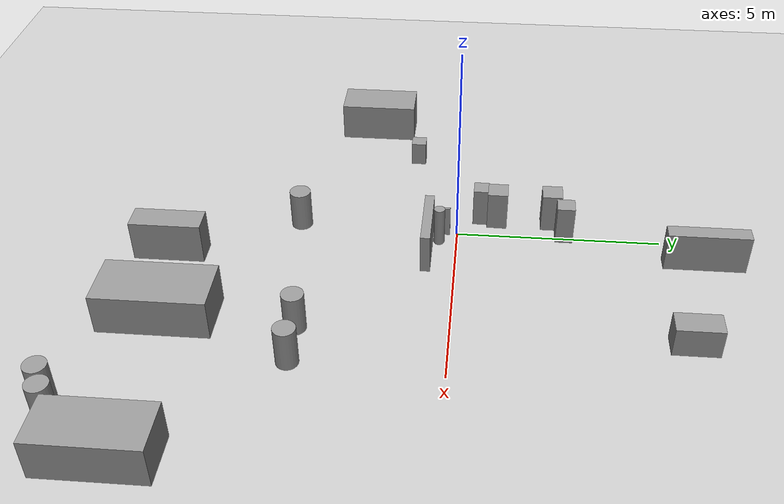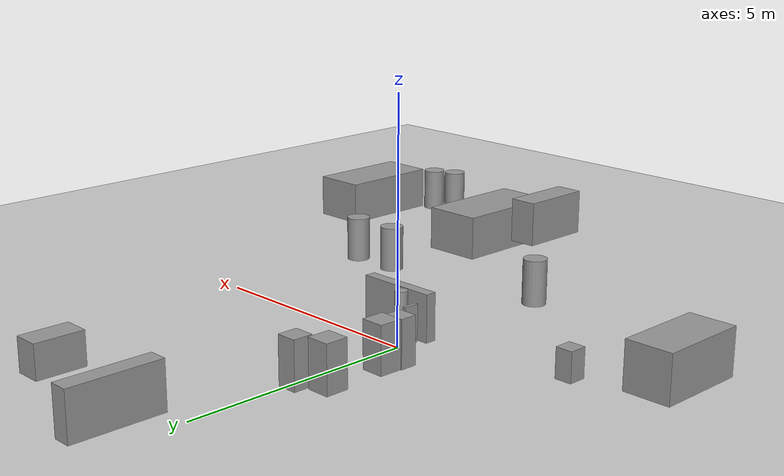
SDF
<sdf version="1.6">
 <world name="default">
  <model name="ground_plane">
   <static>1</static>
   <link name="link">
    <collision name="collision">
     <geometry><plane><normal>0 0 1</normal><size>100 100</size></plane></geometry>
     <surface><friction><ode><mu>100</mu><mu2>50</mu2></ode></friction></surface>
    </collision>
    <visual name="visual">
     <cast_shadows>0</cast_shadows>
     <geometry><plane><normal>0 0 1</normal><size>100 100</size></plane></geometry>
     <material>
      <script><uri>file://media/materials/scripts/gazebo.material</uri><name>Gazebo/Grey</name></script>
     </material>
    </visual>
   </link>
  </model>
  <model name="cma_armario">
   <link name="link_0">
    <pose>1.32157 0.885178 0.5 0 -0 0</pose>
    <inertial>
     <mass>0.402376</mass>
     <inertia>
      <ixx>0.0353686</ixx>
      <ixy>0</ixy>
      <ixz>0</ixz>
      <iyy>0.132616</iyy>
      <iyz>0</iyz>
      <izz>0.100922</izz>
     </inertia>
    </inertial>
    <visual name="visual">
     <geometry><box><size>1.71877 0.234069 1</size></box></geometry>
     <material>
      <lighting>1</lighting>
      <script><uri>file://media/materials/scripts/gazebo.material</uri><name>Gazebo/Grey</name></script>
      <ambient>0.3 0.3 0.3 1</ambient>
      <diffuse>0.7 0.7 0.7 1</diffuse>
      <specular>0.01 0.01 0.01 1</specular>
      <emissive>0 0 0 1</emissive>
     </material>
    </visual>
    <collision name="collision">
     <geometry><box><size>1.71877 0.234069 1</size></box></geometry>
     <surface>
      <friction>
       <ode><mu>1</mu><mu2>1</mu2><fdir1>0 0 0</fdir1><slip1>0</slip1><slip2>0</slip2></ode>
       <torsional>
        <coefficient>1</coefficient>
        <patch_radius>0</patch_radius>
        <surface_radius>0</surface_radius>
        <use_patch_radius>1</use_patch_radius>
        <ode><slip>0</slip></ode>
       </torsional>
      </friction>
      <bounce><restitution_coefficient>0</restitution_coefficient><threshold>1e+06</threshold></bounce>
      <contact>
       <collide_without_contact>0</collide_without_contact>
       <collide_without_contact_bitmask>1</collide_without_contact_bitmask>
       <collide_bitmask>1</collide_bitmask>
       <ode>
        <soft_cfm>0</soft_cfm>
        <soft_erp>0.2</soft_erp>
        <kp>1e+13</kp>
        <kd>1</kd>
        <max_vel>0.01</max_vel>
        <min_depth>0</min_depth>
       </ode>
       <bullet>
        <split_impulse>1</split_impulse>
        <split_impulse_penetration_threshold>-0.01</split_impulse_penetration_threshold>
        <soft_cfm>0</soft_cfm>
        <soft_erp>0.2</soft_erp>
        <kp>1e+13</kp>
        <kd>1</kd>
       </bullet>
      </contact>
     </surface>
    </collision>
   </link>
   <static>0</static>
   <pose>-0.669099 -1.58259 0 0 -0 0.00089</pose>
  </model>
  <model name="cma_lixo">
   <link name="link_1">
    <pose>0.882962 1.81586 0.5 0 -0 0</pose>
    <inertial>
     <mass>0.0687644</mass>
     <inertia>
      <ixx>0.00602588</ixx>
      <ixy>0</ixy>
      <ixz>0</ixz>
      <iyy>0.00602588</iyy>
      <iyz>0</iyz>
      <izz>0.000591068</izz>
     </inertia>
    </inertial>
    <visual name="visual">
     <geometry><cylinder><radius>0.131112</radius><length>1</length></cylinder></geometry>
     <material>
      <lighting>1</lighting>
      <script><uri>file://media/materials/scripts/gazebo.material</uri><name>Gazebo/Grey</name></script>
      <ambient>0.3 0.3 0.3 1</ambient>
      <diffuse>0.7 0.7 0.7 1</diffuse>
      <specular>0.01 0.01 0.01 1</specular>
      <emissive>0 0 0 1</emissive>
     </material>
    </visual>
    <collision name="collision">
     <geometry><cylinder><radius>0.131112</radius><length>1</length></cylinder></geometry>
     <surface>
      <friction>
       <ode><mu>1</mu><mu2>1</mu2><fdir1>0 0 0</fdir1><slip1>0</slip1><slip2>0</slip2></ode>
       <torsional>
        <coefficient>1</coefficient>
        <patch_radius>0</patch_radius>
        <surface_radius>0</surface_radius>
        <use_patch_radius>1</use_patch_radius>
        <ode><slip>0</slip></ode>
       </torsional>
      </friction>
      <bounce><restitution_coefficient>0</restitution_coefficient><threshold>1e+06</threshold></bounce>
      <contact>
       <collide_without_contact>0</collide_without_contact>
       <collide_without_contact_bitmask>1</collide_without_contact_bitmask>
       <collide_bitmask>1</collide_bitmask>
       <ode>
        <soft_cfm>0</soft_cfm>
        <soft_erp>0.2</soft_erp>
        <kp>1e+13</kp>
        <kd>1</kd>
        <max_vel>0.01</max_vel>
        <min_depth>0</min_depth>
       </ode>
       <bullet>
        <split_impulse>1</split_impulse>
        <split_impulse_penetration_threshold>-0.01</split_impulse_penetration_threshold>
        <soft_cfm>0</soft_cfm>
        <soft_erp>0.2</soft_erp>
        <kp>1e+13</kp>
        <kd>1</kd>
       </bullet>
      </contact>
     </surface>
    </collision>
   </link>
   <static>0</static>
   <pose>-1.35785 -1.52544 -2e-06 0 0 -0.543097</pose>
  </model>
  <model name="cma_gaveteiro_pequeno_0">
   <link name="link_0">
    <pose>0.256174 1.25055 0.5 0 -0 0</pose>
    <inertial>
     <mass>0.187186</mass>
     <inertia>
      <ixx>0.01851</ixx>
      <ixy>0</ixy>
      <ixz>0</ixz>
      <iyy>0.0185276</iyy>
      <iyz>0</iyz>
      <izz>0.00583981</izz>
     </inertia>
    </inertial>
    <visual name="visual">
     <geometry><box><size>0.433317 0.432002 1</size></box></geometry>
     <material>
      <lighting>1</lighting>
      <script><uri>file://media/materials/scripts/gazebo.material</uri><name>Gazebo/Grey</name></script>
      <ambient>0.3 0.3 0.3 1</ambient>
      <diffuse>0.7 0.7 0.7 1</diffuse>
      <specular>0.01 0.01 0.01 1</specular>
      <emissive>0 0 0 1</emissive>
     </material>
    </visual>
    <collision name="collision">
     <geometry><box><size>0.433317 0.432002 1</size></box></geometry>
     <surface>
      <friction>
       <ode><mu>1</mu><mu2>1</mu2><fdir1>0 0 0</fdir1><slip1>0</slip1><slip2>0</slip2></ode>
       <torsional>
        <coefficient>1</coefficient>
        <patch_radius>0</patch_radius>
        <surface_radius>0</surface_radius>
        <use_patch_radius>1</use_patch_radius>
        <ode><slip>0</slip></ode>
       </torsional>
      </friction>
      <bounce><restitution_coefficient>0</restitution_coefficient><threshold>1e+06</threshold></bounce>
      <contact>
       <collide_without_contact>0</collide_without_contact>
       <collide_without_contact_bitmask>1</collide_without_contact_bitmask>
       <collide_bitmask>1</collide_bitmask>
       <ode>
        <soft_cfm>0</soft_cfm>
        <soft_erp>0.2</soft_erp>
        <kp>1e+13</kp>
        <kd>1</kd>
        <max_vel>0.01</max_vel>
        <min_depth>0</min_depth>
       </ode>
       <bullet>
        <split_impulse>1</split_impulse>
        <split_impulse_penetration_threshold>-0.01</split_impulse_penetration_threshold>
        <soft_cfm>0</soft_cfm>
        <soft_erp>0.2</soft_erp>
        <kp>1e+13</kp>
        <kd>1</kd>
       </bullet>
      </contact>
     </surface>
    </collision>
   </link>
   <static>0</static>
   <pose>-0.336336 1.39518 -4e-06 1e-06 -6e-06 -0.000273</pose>
  </model>
  <model name="cma_gaveteiro">
   <link name="link_0">
    <pose>-0 4e-06 0 0 -0 0</pose>
    <inertial>
     <mass>0.245086</mass>
     <inertia>
      <ixx>0.025418</ixx>
      <ixy>0</ixy>
      <ixz>0</ixz>
      <iyy>0.0254411</iyy>
      <iyz>0</iyz>
      <izz>0.0100113</izz>
     </inertia>
    </inertial>
    <visual name="visual">
     <geometry><box><size>0.495657 0.494491 1</size></box></geometry>
     <material>
      <lighting>1</lighting>
      <script><uri>file://media/materials/scripts/gazebo.material</uri><name>Gazebo/Grey</name></script>
      <ambient>0.3 0.3 0.3 1</ambient>
      <diffuse>0.7 0.7 0.7 1</diffuse>
      <specular>0.01 0.01 0.01 1</specular>
      <emissive>0 0 0 1</emissive>
     </material>
    </visual>
    <collision name="collision">
     <geometry><box><size>0.495657 0.494491 1</size></box></geometry>
     <surface>
      <friction>
       <ode><mu>1</mu><mu2>1</mu2><fdir1>0 0 0</fdir1><slip1>0</slip1><slip2>0</slip2></ode>
       <torsional>
        <coefficient>1</coefficient>
        <patch_radius>0</patch_radius>
        <surface_radius>0</surface_radius>
        <use_patch_radius>1</use_patch_radius>
        <ode><slip>0</slip></ode>
       </torsional>
      </friction>
      <bounce><restitution_coefficient>0</restitution_coefficient><threshold>1e+06</threshold></bounce>
      <contact>
       <collide_without_contact>0</collide_without_contact>
       <collide_without_contact_bitmask>1</collide_without_contact_bitmask>
       <collide_bitmask>1</collide_bitmask>
       <ode>
        <soft_cfm>0</soft_cfm>
        <soft_erp>0.2</soft_erp>
        <kp>1e+13</kp>
        <kd>1</kd>
        <max_vel>0.01</max_vel>
        <min_depth>0</min_depth>
       </ode>
       <bullet>
        <split_impulse>1</split_impulse>
        <split_impulse_penetration_threshold>-0.01</split_impulse_penetration_threshold>
        <soft_cfm>0</soft_cfm>
        <soft_erp>0.2</soft_erp>
        <kp>1e+13</kp>
        <kd>1</kd>
       </bullet>
      </contact>
     </surface>
    </collision>
   </link>
   <static>0</static>
   <pose>-0.591985 2.32618 0.499997 -7e-06 -6e-06 0.000727</pose>
  </model>
  <model name="cma_gaveteiro_0">
   <link name="link_0">
    <pose>-0 4e-06 0 0 -0 0</pose>
    <inertial>
     <mass>0.245086</mass>
     <inertia>
      <ixx>0.025418</ixx>
      <ixy>0</ixy>
      <ixz>0</ixz>
      <iyy>0.0254411</iyy>
      <iyz>0</iyz>
      <izz>0.0100113</izz>
     </inertia>
    </inertial>
    <visual name="visual">
     <geometry><box><size>0.495657 0.494491 1</size></box></geometry>
     <material>
      <lighting>1</lighting>
      <script><uri>file://media/materials/scripts/gazebo.material</uri><name>Gazebo/Grey</name></script>
      <ambient>0.3 0.3 0.3 1</ambient>
      <diffuse>0.7 0.7 0.7 1</diffuse>
      <specular>0.01 0.01 0.01 1</specular>
      <emissive>0 0 0 1</emissive>
     </material>
    </visual>
    <collision name="collision">
     <geometry><box><size>0.495657 0.494491 1</size></box></geometry>
     <surface>
      <friction>
       <ode><mu>1</mu><mu2>1</mu2><fdir1>0 0 0</fdir1><slip1>0</slip1><slip2>0</slip2></ode>
       <torsional>
        <coefficient>1</coefficient>
        <patch_radius>0</patch_radius>
        <surface_radius>0</surface_radius>
        <use_patch_radius>1</use_patch_radius>
        <ode><slip>0</slip></ode>
       </torsional>
      </friction>
      <bounce><restitution_coefficient>0</restitution_coefficient><threshold>1e+06</threshold></bounce>
      <contact>
       <collide_without_contact>0</collide_without_contact>
       <collide_without_contact_bitmask>1</collide_without_contact_bitmask>
       <collide_bitmask>1</collide_bitmask>
       <ode>
        <soft_cfm>0</soft_cfm>
        <soft_erp>0.2</soft_erp>
        <kp>1e+13</kp>
        <kd>1</kd>
        <max_vel>0.01</max_vel>
        <min_depth>0</min_depth>
       </ode>
       <bullet>
        <split_impulse>1</split_impulse>
        <split_impulse_penetration_threshold>-0.01</split_impulse_penetration_threshold>
        <soft_cfm>0</soft_cfm>
        <soft_erp>0.2</soft_erp>
        <kp>1e+13</kp>
        <kd>1</kd>
       </bullet>
      </contact>
     </surface>
    </collision>
   </link>
   <static>0</static>
   <pose>-0.578253 0.983065 0.499997 -7e-06 6e-06 -0.018035</pose>
  </model>
  <model name="cma_sofa2">
   <link name="link_0">
    <pose>-4.668 -2.00601 0.5 0 -0 0</pose>
    <inertial>
     <mass>1.98683</mass>
     <inertia>
      <ixx>0.819149</ixx>
      <ixy>0</ixy>
      <ixz>0</ixz>
      <iyy>0.331138</iyy>
      <iyz>0</iyz>
      <izz>0.819149</izz>
     </inertia>
    </inertial>
    <visual name="visual">
     <geometry><box><size>1 1.98682 1</size></box></geometry>
     <material>
      <lighting>1</lighting>
      <script><uri>file://media/materials/scripts/gazebo.material</uri><name>Gazebo/Grey</name></script>
      <ambient>0.3 0.3 0.3 1</ambient>
      <diffuse>0.7 0.7 0.7 1</diffuse>
      <specular>0.01 0.01 0.01 1</specular>
      <emissive>0 0 0 1</emissive>
     </material>
    </visual>
    <collision name="collision">
     <geometry><box><size>1 1.98682 1</size></box></geometry>
     <surface>
      <friction>
       <ode><mu>1</mu><mu2>1</mu2><fdir1>0 0 0</fdir1><slip1>0</slip1><slip2>0</slip2></ode>
       <torsional>
        <coefficient>1</coefficient>
        <patch_radius>0</patch_radius>
        <surface_radius>0</surface_radius>
        <use_patch_radius>1</use_patch_radius>
        <ode><slip>0</slip></ode>
       </torsional>
      </friction>
      <bounce><restitution_coefficient>0</restitution_coefficient><threshold>1e+06</threshold></bounce>
      <contact>
       <collide_without_contact>0</collide_without_contact>
       <collide_without_contact_bitmask>1</collide_without_contact_bitmask>
       <collide_bitmask>1</collide_bitmask>
       <ode>
        <soft_cfm>0</soft_cfm>
        <soft_erp>0.2</soft_erp>
        <kp>1e+13</kp>
        <kd>1</kd>
        <max_vel>0.01</max_vel>
        <min_depth>0</min_depth>
       </ode>
       <bullet>
        <split_impulse>1</split_impulse>
        <split_impulse_penetration_threshold>-0.01</split_impulse_penetration_threshold>
        <soft_cfm>0</soft_cfm>
        <soft_erp>0.2</soft_erp>
        <kp>1e+13</kp>
        <kd>1</kd>
       </bullet>
      </contact>
     </surface>
    </collision>
   </link>
   <static>0</static>
   <pose>-0.095323 -0.409527 -1.3e-05 -3e-06 1e-06 -5e-06</pose>
  </model>
  <model name="cma_apoio_s">
   <link name="link_1">
    <pose>-1.9376 -3.46551 0.5 0 -0 0</pose>
    <inertial>
     <mass>0.0878463</mass>
     <inertia>
      <ixx>0.00392696</ixx>
      <ixy>0</ixy>
      <ixz>0</ixz>
      <iyy>0.00385356</iyy>
      <iyz>0</iyz>
      <izz>0.0020587</izz>
     </inertia>
    </inertial>
    <visual name="visual">
     <geometry><box><size>0.368223 0.381592 0.625118</size></box></geometry>
     <material>
      <lighting>1</lighting>
      <script><uri>file://media/materials/scripts/gazebo.material</uri><name>Gazebo/Grey</name></script>
      <ambient>0.3 0.3 0.3 1</ambient>
      <diffuse>0.7 0.7 0.7 1</diffuse>
      <specular>0.01 0.01 0.01 1</specular>
      <emissive>0 0 0 1</emissive>
     </material>
    </visual>
    <collision name="collision">
     <geometry><box><size>0.368223 0.381592 0.625118</size></box></geometry>
     <surface>
      <friction>
       <ode><mu>1</mu><mu2>1</mu2><fdir1>0 0 0</fdir1><slip1>0</slip1><slip2>0</slip2></ode>
       <torsional>
        <coefficient>1</coefficient>
        <patch_radius>0</patch_radius>
        <surface_radius>0</surface_radius>
        <use_patch_radius>1</use_patch_radius>
        <ode><slip>0</slip></ode>
       </torsional>
      </friction>
      <bounce><restitution_coefficient>0</restitution_coefficient><threshold>1e+06</threshold></bounce>
      <contact>
       <collide_without_contact>0</collide_without_contact>
       <collide_without_contact_bitmask>1</collide_without_contact_bitmask>
       <collide_bitmask>1</collide_bitmask>
       <ode>
        <soft_cfm>0</soft_cfm>
        <soft_erp>0.2</soft_erp>
        <kp>1e+13</kp>
        <kd>1</kd>
        <max_vel>0.01</max_vel>
        <min_depth>0</min_depth>
       </ode>
       <bullet>
        <split_impulse>1</split_impulse>
        <split_impulse_penetration_threshold>-0.01</split_impulse_penetration_threshold>
        <soft_cfm>0</soft_cfm>
        <soft_erp>0.2</soft_erp>
        <kp>1e+13</kp>
        <kd>1</kd>
       </bullet>
      </contact>
     </surface>
    </collision>
   </link>
   <static>0</static>
   <pose>-1.31361 2.27354 -0.187385 1.2e-05 -9e-06 0.000485</pose>
  </model>
  <model name="cma_sofa_ch2">
   <link name="link_0">
    <pose>7.54152 -9.06061 0.5 0 -0 0</pose>
    <inertial>
     <mass>3.05287</mass>
     <inertia><ixx>1.79053</ixx><ixy>0</ixy><ixz>0</ixz><iyy>0.647089</iyy><iyz>0</iyz><izz>1.92881</izz></inertia>
    </inertial>
    <visual name="visual">
     <geometry><box><size>1.24235 2.45729 1</size></box></geometry>
     <material>
      <lighting>1</lighting>
      <script><uri>file://media/materials/scripts/gazebo.material</uri><name>Gazebo/Grey</name></script>
      <ambient>0.3 0.3 0.3 1</ambient>
      <diffuse>0.7 0.7 0.7 1</diffuse>
      <specular>0.01 0.01 0.01 1</specular>
      <emissive>0 0 0 1</emissive>
     </material>
    </visual>
    <collision name="collision">
     <geometry><box><size>1.24235 2.45729 1</size></box></geometry>
     <surface>
      <friction>
       <ode><mu>1</mu><mu2>1</mu2><fdir1>0 0 0</fdir1><slip1>0</slip1><slip2>0</slip2></ode>
       <torsional>
        <coefficient>1</coefficient>
        <patch_radius>0</patch_radius>
        <surface_radius>0</surface_radius>
        <use_patch_radius>1</use_patch_radius>
        <ode><slip>0</slip></ode>
       </torsional>
      </friction>
      <bounce><restitution_coefficient>0</restitution_coefficient><threshold>1e+06</threshold></bounce>
      <contact>
       <collide_without_contact>0</collide_without_contact>
       <collide_without_contact_bitmask>1</collide_without_contact_bitmask>
       <collide_bitmask>1</collide_bitmask>
       <ode>
        <soft_cfm>0</soft_cfm>
        <soft_erp>0.2</soft_erp>
        <kp>1e+13</kp>
        <kd>1</kd>
        <max_vel>0.01</max_vel>
        <min_depth>0</min_depth>
       </ode>
       <bullet>
        <split_impulse>1</split_impulse>
        <split_impulse_penetration_threshold>-0.01</split_impulse_penetration_threshold>
        <soft_cfm>0</soft_cfm>
        <soft_erp>0.2</soft_erp>
        <kp>1e+13</kp>
        <kd>1</kd>
       </bullet>
      </contact>
     </surface>
    </collision>
   </link>
   <model name="cma_armarioL">
    <link name="link_0">
     <pose>3.66226 -6.16735 0.5 0 -0 0</pose>
     <inertial>
      <mass>1.04821</mass>
      <inertia>
       <ixx>0.330873</ixx>
       <ixy>0</ixy>
       <ixz>0</ixz>
       <iyy>0.121777</iyy>
       <iyz>0</iyz>
       <izz>0.277949</izz>
      </inertia>
     </inertial>
     <visual name="visual">
      <geometry><box><size>0.627792 1.66972 1</size></box></geometry>
      <material>
       <lighting>1</lighting>
       <script><uri>file://media/materials/scripts/gazebo.material</uri><name>Gazebo/Grey</name></script>
       <ambient>0.3 0.3 0.3 1</ambient>
       <diffuse>0.7 0.7 0.7 1</diffuse>
       <specular>0.01 0.01 0.01 1</specular>
       <emissive>0 0 0 1</emissive>
      </material>
     </visual>
     <collision name="collision">
      <geometry><box><size>0.627792 1.66972 1</size></box></geometry>
      <surface>
       <friction>
        <ode><mu>1</mu><mu2>1</mu2><fdir1>0 0 0</fdir1><slip1>0</slip1><slip2>0</slip2></ode>
        <torsional>
         <coefficient>1</coefficient>
         <patch_radius>0</patch_radius>
         <surface_radius>0</surface_radius>
         <use_patch_radius>1</use_patch_radius>
         <ode><slip>0</slip></ode>
        </torsional>
       </friction>
       <bounce><restitution_coefficient>0</restitution_coefficient><threshold>1e+06</threshold></bounce>
       <contact>
        <collide_without_contact>0</collide_without_contact>
        <collide_without_contact_bitmask>1</collide_without_contact_bitmask>
        <collide_bitmask>1</collide_bitmask>
        <ode>
         <soft_cfm>0</soft_cfm>
         <soft_erp>0.2</soft_erp>
         <kp>1e+13</kp>
         <kd>1</kd>
         <max_vel>0.01</max_vel>
         <min_depth>0</min_depth>
        </ode>
        <bullet>
         <split_impulse>1</split_impulse>
         <split_impulse_penetration_threshold>-0.01</split_impulse_penetration_threshold>
         <soft_cfm>0</soft_cfm>
         <soft_erp>0.2</soft_erp>
         <kp>1e+13</kp>
         <kd>1</kd>
        </bullet>
       </contact>
      </surface>
     </collision>
    </link>
    <static>0</static>
    <pose>-1.91803 -2.92011 0.5 0 -0 0</pose>
   </model>
   <model name="cma_cesto">
    <link name="link_1">
     <pose>-0.329659 -1.55494 0 0 -0 0</pose>
     <inertial>
      <mass>0.267897</mass>
      <inertia>
       <ixx>0.0268102</ixx>
       <ixy>0</ixy>
       <ixz>0</ixz>
       <iyy>0.0268102</iyy>
       <iyz>0</iyz>
       <izz>0.00897111</izz>
      </inertia>
     </inertial>
     <visual name="visual">
      <geometry><cylinder><radius>0.258792</radius><length>1</length></cylinder></geometry>
      <material>
       <lighting>1</lighting>
       <script><uri>file://media/materials/scripts/gazebo.material</uri><name>Gazebo/Grey</name></script>
       <ambient>0.3 0.3 0.3 1</ambient>
       <diffuse>0.7 0.7 0.7 1</diffuse>
       <specular>0.01 0.01 0.01 1</specular>
       <emissive>0 0 0 1</emissive>
      </material>
     </visual>
     <collision name="collision">
      <geometry><cylinder><radius>0.258792</radius><length>1</length></cylinder></geometry>
      <surface>
       <friction>
        <ode><mu>1</mu><mu2>1</mu2><fdir1>0 0 0</fdir1><slip1>0</slip1><slip2>0</slip2></ode>
        <torsional>
         <coefficient>1</coefficient>
         <patch_radius>0</patch_radius>
         <surface_radius>0</surface_radius>
         <use_patch_radius>1</use_patch_radius>
         <ode><slip>0</slip></ode>
        </torsional>
       </friction>
       <bounce><restitution_coefficient>0</restitution_coefficient><threshold>1e+06</threshold></bounce>
       <contact>
        <collide_without_contact>0</collide_without_contact>
        <collide_without_contact_bitmask>1</collide_without_contact_bitmask>
        <collide_bitmask>1</collide_bitmask>
        <ode>
         <soft_cfm>0</soft_cfm>
         <soft_erp>0.2</soft_erp>
         <kp>1e+13</kp>
         <kd>1</kd>
         <max_vel>0.01</max_vel>
         <min_depth>0</min_depth>
        </ode>
        <bullet>
         <split_impulse>1</split_impulse>
         <split_impulse_penetration_threshold>-0.01</split_impulse_penetration_threshold>
         <soft_cfm>0</soft_cfm>
         <soft_erp>0.2</soft_erp>
         <kp>1e+13</kp>
         <kd>1</kd>
        </bullet>
       </contact>
      </surface>
     </collision>
    </link>
    <static>0</static>
    <pose>6.97935 -8.88509 0.5 0 -0 0</pose>
   </model>
   <model name="cma_cesto_0">
    <link name="link_1">
     <pose>-0.329659 -1.55494 0 0 -0 0</pose>
     <inertial>
      <mass>0.267897</mass>
      <inertia>
       <ixx>0.0268102</ixx>
       <ixy>0</ixy>
       <ixz>0</ixz>
       <iyy>0.0268102</iyy>
       <iyz>0</iyz>
       <izz>0.00897111</izz>
      </inertia>
     </inertial>
     <visual name="visual">
      <geometry><cylinder><radius>0.258792</radius><length>1</length></cylinder></geometry>
      <material>
       <lighting>1</lighting>
       <script><uri>file://media/materials/scripts/gazebo.material</uri><name>Gazebo/Grey</name></script>
       <ambient>0.3 0.3 0.3 1</ambient>
       <diffuse>0.7 0.7 0.7 1</diffuse>
       <specular>0.01 0.01 0.01 1</specular>
       <emissive>0 0 0 1</emissive>
      </material>
     </visual>
     <collision name="collision">
      <geometry><cylinder><radius>0.258792</radius><length>1</length></cylinder></geometry>
      <surface>
       <friction>
        <ode><mu>1</mu><mu2>1</mu2><fdir1>0 0 0</fdir1><slip1>0</slip1><slip2>0</slip2></ode>
        <torsional>
         <coefficient>1</coefficient>
         <patch_radius>0</patch_radius>
         <surface_radius>0</surface_radius>
         <use_patch_radius>1</use_patch_radius>
         <ode><slip>0</slip></ode>
        </torsional>
       </friction>
       <bounce><restitution_coefficient>0</restitution_coefficient><threshold>1e+06</threshold></bounce>
       <contact>
        <collide_without_contact>0</collide_without_contact>
        <collide_without_contact_bitmask>1</collide_without_contact_bitmask>
        <collide_bitmask>1</collide_bitmask>
        <ode>
         <soft_cfm>0</soft_cfm>
         <soft_erp>0.2</soft_erp>
         <kp>1e+13</kp>
         <kd>1</kd>
         <max_vel>0.01</max_vel>
         <min_depth>0</min_depth>
        </ode>
        <bullet>
         <split_impulse>1</split_impulse>
         <split_impulse_penetration_threshold>-0.01</split_impulse_penetration_threshold>
         <soft_cfm>0</soft_cfm>
         <soft_erp>0.2</soft_erp>
         <kp>1e+13</kp>
         <kd>1</kd>
        </bullet>
       </contact>
      </surface>
     </collision>
    </link>
    <static>0</static>
    <pose>6.4663 -9.11922 0.5 0 -0 0</pose>
   </model>
   <model name="cma_cesto_1">
    <link name="link_1">
     <pose>-0.329659 -1.55494 0 0 -0 0</pose>
     <inertial>
      <mass>0.267897</mass>
      <inertia>
       <ixx>0.0268102</ixx>
       <ixy>0</ixy>
       <ixz>0</ixz>
       <iyy>0.0268102</iyy>
       <iyz>0</iyz>
       <izz>0.00897111</izz>
      </inertia>
     </inertial>
     <visual name="visual">
      <geometry><cylinder><radius>0.258792</radius><length>1</length></cylinder></geometry>
      <material>
       <lighting>1</lighting>
       <script><uri>file://media/materials/scripts/gazebo.material</uri><name>Gazebo/Grey</name></script>
       <ambient>0.3 0.3 0.3 1</ambient>
       <diffuse>0.7 0.7 0.7 1</diffuse>
       <specular>0.01 0.01 0.01 1</specular>
       <emissive>0 0 0 1</emissive>
      </material>
     </visual>
     <collision name="collision">
      <geometry><cylinder><radius>0.258792</radius><length>1</length></cylinder></geometry>
      <surface>
       <friction>
        <ode><mu>1</mu><mu2>1</mu2><fdir1>0 0 0</fdir1><slip1>0</slip1><slip2>0</slip2></ode>
        <torsional>
         <coefficient>1</coefficient>
         <patch_radius>0</patch_radius>
         <surface_radius>0</surface_radius>
         <use_patch_radius>1</use_patch_radius>
         <ode><slip>0</slip></ode>
        </torsional>
       </friction>
       <bounce><restitution_coefficient>0</restitution_coefficient><threshold>1e+06</threshold></bounce>
       <contact>
        <collide_without_contact>0</collide_without_contact>
        <collide_without_contact_bitmask>1</collide_without_contact_bitmask>
        <collide_bitmask>1</collide_bitmask>
        <ode>
         <soft_cfm>0</soft_cfm>
         <soft_erp>0.2</soft_erp>
         <kp>1e+13</kp>
         <kd>1</kd>
         <max_vel>0.01</max_vel>
         <min_depth>0</min_depth>
        </ode>
        <bullet>
         <split_impulse>1</split_impulse>
         <split_impulse_penetration_threshold>-0.01</split_impulse_penetration_threshold>
         <soft_cfm>0</soft_cfm>
         <soft_erp>0.2</soft_erp>
         <kp>1e+13</kp>
         <kd>1</kd>
        </bullet>
       </contact>
      </surface>
     </collision>
    </link>
    <static>0</static>
    <pose>0.091229 -4.78918 0.5 0 -0 0</pose>
   </model>
   <model name="cma_cesto_2">
    <link name="link_1">
     <pose>-0.329659 -1.55494 0 0 -0 0</pose>
     <inertial>
      <mass>0.267897</mass>
      <inertia>
       <ixx>0.0268102</ixx>
       <ixy>0</ixy>
       <ixz>0</ixz>
       <iyy>0.0268102</iyy>
       <iyz>0</iyz>
       <izz>0.00897111</izz>
      </inertia>
     </inertial>
     <visual name="visual">
      <geometry><cylinder><radius>0.258792</radius><length>1</length></cylinder></geometry>
      <material>
       <lighting>1</lighting>
       <script><uri>file://media/materials/scripts/gazebo.material</uri><name>Gazebo/Grey</name></script>
       <ambient>0.3 0.3 0.3 1</ambient>
       <diffuse>0.7 0.7 0.7 1</diffuse>
       <specular>0.01 0.01 0.01 1</specular>
       <emissive>0 0 0 1</emissive>
      </material>
     </visual>
     <collision name="collision">
      <geometry><cylinder><radius>0.258792</radius><length>1</length></cylinder></geometry>
      <surface>
       <friction>
        <ode><mu>1</mu><mu2>1</mu2><fdir1>0 0 0</fdir1><slip1>0</slip1><slip2>0</slip2></ode>
        <torsional>
         <coefficient>1</coefficient>
         <patch_radius>0</patch_radius>
         <surface_radius>0</surface_radius>
         <use_patch_radius>1</use_patch_radius>
         <ode><slip>0</slip></ode>
        </torsional>
       </friction>
       <bounce><restitution_coefficient>0</restitution_coefficient><threshold>1e+06</threshold></bounce>
       <contact>
        <collide_without_contact>0</collide_without_contact>
        <collide_without_contact_bitmask>1</collide_without_contact_bitmask>
        <collide_bitmask>1</collide_bitmask>
        <ode>
         <soft_cfm>0</soft_cfm>
         <soft_erp>0.2</soft_erp>
         <kp>1e+13</kp>
         <kd>1</kd>
         <max_vel>0.01</max_vel>
         <min_depth>0</min_depth>
        </ode>
        <bullet>
         <split_impulse>1</split_impulse>
         <split_impulse_penetration_threshold>-0.01</split_impulse_penetration_threshold>
         <soft_cfm>0</soft_cfm>
         <soft_erp>0.2</soft_erp>
         <kp>1e+13</kp>
         <kd>1</kd>
        </bullet>
       </contact>
      </surface>
     </collision>
    </link>
    <static>0</static>
    <pose>5.00434 -4.30015 0.5 0 -0 0</pose>
   </model>
   <model name="cma_cesto_3">
    <link name="link_1">
     <pose>-0.329659 -1.55494 0 0 -0 0</pose>
     <inertial>
      <mass>0.267897</mass>
      <inertia>
       <ixx>0.0268102</ixx>
       <ixy>0</ixy>
       <ixz>0</ixz>
       <iyy>0.0268102</iyy>
       <iyz>0</iyz>
       <izz>0.00897111</izz>
      </inertia>
     </inertial>
     <visual name="visual">
      <geometry><cylinder><radius>0.258792</radius><length>1</length></cylinder></geometry>
      <material>
       <lighting>1</lighting>
       <script><uri>file://media/materials/scripts/gazebo.material</uri><name>Gazebo/Grey</name></script>
       <ambient>0.3 0.3 0.3 1</ambient>
       <diffuse>0.7 0.7 0.7 1</diffuse>
       <specular>0.01 0.01 0.01 1</specular>
       <emissive>0 0 0 1</emissive>
      </material>
     </visual>
     <collision name="collision">
      <geometry><cylinder><radius>0.258792</radius><length>1</length></cylinder></geometry>
      <surface>
       <friction>
        <ode><mu>1</mu><mu2>1</mu2><fdir1>0 0 0</fdir1><slip1>0</slip1><slip2>0</slip2></ode>
        <torsional>
         <coefficient>1</coefficient>
         <patch_radius>0</patch_radius>
         <surface_radius>0</surface_radius>
         <use_patch_radius>1</use_patch_radius>
         <ode><slip>0</slip></ode>
        </torsional>
       </friction>
       <bounce><restitution_coefficient>0</restitution_coefficient><threshold>1e+06</threshold></bounce>
       <contact>
        <collide_without_contact>0</collide_without_contact>
        <collide_without_contact_bitmask>1</collide_without_contact_bitmask>
        <collide_bitmask>1</collide_bitmask>
        <ode>
         <soft_cfm>0</soft_cfm>
         <soft_erp>0.2</soft_erp>
         <kp>1e+13</kp>
         <kd>1</kd>
         <max_vel>0.01</max_vel>
         <min_depth>0</min_depth>
        </ode>
        <bullet>
         <split_impulse>1</split_impulse>
         <split_impulse_penetration_threshold>-0.01</split_impulse_penetration_threshold>
         <soft_cfm>0</soft_cfm>
         <soft_erp>0.2</soft_erp>
         <kp>1e+13</kp>
         <kd>1</kd>
        </bullet>
       </contact>
      </surface>
     </collision>
    </link>
    <static>0</static>
    <pose>3.91768 -4.3154 0.5 0 -0 0</pose>
   </model>
   <model name="cma_sofa_ch1">
    <link name="link_0">
     <pose>-4e-06 5e-06 0 0 -0 0</pose>
     <inertial>
      <mass>3.51192</mass>
      <inertia><ixx>2.30831</ixx><ixy>0</ixy><ixz>0</ixz><iyy>0.816746</iyy><iyz>0</iyz><izz>2.53974</izz></inertia>
     </inertial>
     <visual name="visual">
      <geometry><box><size>1.33823 2.62439 1</size></box></geometry>
      <material>
       <lighting>1</lighting>
       <script><uri>file://media/materials/scripts/gazebo.material</uri><name>Gazebo/Grey</name></script>
       <ambient>0.3 0.3 0.3 1</ambient>
       <diffuse>0.7 0.7 0.7 1</diffuse>
       <specular>0.01 0.01 0.01 1</specular>
       <emissive>0 0 0 1</emissive>
      </material>
     </visual>
     <collision name="collision">
      <geometry><box><size>1.33823 2.62439 1</size></box></geometry>
      <surface>
       <friction>
        <ode><mu>1</mu><mu2>1</mu2><fdir1>0 0 0</fdir1><slip1>0</slip1><slip2>0</slip2></ode>
        <torsional>
         <coefficient>1</coefficient>
         <patch_radius>0</patch_radius>
         <surface_radius>0</surface_radius>
         <use_patch_radius>1</use_patch_radius>
         <ode><slip>0</slip></ode>
        </torsional>
       </friction>
       <bounce><restitution_coefficient>0</restitution_coefficient><threshold>1e+06</threshold></bounce>
       <contact>
        <collide_without_contact>0</collide_without_contact>
        <collide_without_contact_bitmask>1</collide_without_contact_bitmask>
        <collide_bitmask>1</collide_bitmask>
        <ode>
         <soft_cfm>0</soft_cfm>
         <soft_erp>0.2</soft_erp>
         <kp>1e+13</kp>
         <kd>1</kd>
         <max_vel>0.01</max_vel>
         <min_depth>0</min_depth>
        </ode>
        <bullet>
         <split_impulse>1</split_impulse>
         <split_impulse_penetration_threshold>-0.01</split_impulse_penetration_threshold>
         <soft_cfm>0</soft_cfm>
         <soft_erp>0.2</soft_erp>
         <kp>1e+13</kp>
         <kd>1</kd>
        </bullet>
       </contact>
      </surface>
     </collision>
    </link>
    <static>0</static>
    <pose>3.4236 -8.99816 0.5 0 -0 0</pose>
   </model>
   <static>0</static>
   <pose>0.11721 2.42164 0 0 -0 0</pose>
  </model>
  <model name="cma_gaveteiro_pequeno_e">
   <link name="link_1">
    <pose>1e-06 -3e-06 0 0 -0 0</pose>
    <inertial>
     <mass>0.145532</mass>
     <inertia>
      <ixx>0.0136813</ixx>
      <ixy>0</ixy>
      <ixz>0</ixz>
      <iyy>0.0141327</iyy>
      <iyz>0</iyz>
      <izz>0.00355866</izz>
     </inertia>
    </inertial>
    <visual name="visual">
     <geometry><box><size>0.4066 0.357918 1</size></box></geometry>
     <material>
      <lighting>1</lighting>
      <script><uri>file://media/materials/scripts/gazebo.material</uri><name>Gazebo/Grey</name></script>
      <ambient>0.3 0.3 0.3 1</ambient>
      <diffuse>0.7 0.7 0.7 1</diffuse>
      <specular>0.01 0.01 0.01 1</specular>
      <emissive>0 0 0 1</emissive>
     </material>
    </visual>
    <collision name="collision">
     <geometry><box><size>0.4066 0.357918 1</size></box></geometry>
     <surface>
      <friction>
       <ode><mu>1</mu><mu2>1</mu2><fdir1>0 0 0</fdir1><slip1>0</slip1><slip2>0</slip2></ode>
       <torsional>
        <coefficient>1</coefficient>
        <patch_radius>0</patch_radius>
        <surface_radius>0</surface_radius>
        <use_patch_radius>1</use_patch_radius>
        <ode><slip>0</slip></ode>
       </torsional>
      </friction>
      <bounce><restitution_coefficient>0</restitution_coefficient><threshold>1e+06</threshold></bounce>
      <contact>
       <collide_without_contact>0</collide_without_contact>
       <collide_without_contact_bitmask>1</collide_without_contact_bitmask>
       <collide_bitmask>1</collide_bitmask>
       <ode>
        <soft_cfm>0</soft_cfm>
        <soft_erp>0.2</soft_erp>
        <kp>1e+13</kp>
        <kd>1</kd>
        <max_vel>0.01</max_vel>
        <min_depth>0</min_depth>
       </ode>
       <bullet>
        <split_impulse>1</split_impulse>
        <split_impulse_penetration_threshold>-0.01</split_impulse_penetration_threshold>
        <soft_cfm>0</soft_cfm>
        <soft_erp>0.2</soft_erp>
        <kp>1e+13</kp>
        <kd>1</kd>
       </bullet>
      </contact>
     </surface>
    </collision>
   </link>
   <static>0</static>
   <pose>-0.653219 0.558149 0.499999 -4e-06 3e-06 -0.018035</pose>
  </model>
  <model name="cma_pe_mesa2">
   <link name="link_0">
    <pose>-1e-06 0 0 0 -0 0</pose>
    <inertial>
     <mass>0.0184993</mass>
     <inertia>
      <ixx>0.00113785</ixx>
      <ixy>0</ixy>
      <ixz>0</ixz>
      <iyy>0.000973568</iyy>
      <iyz>0</iyz>
      <izz>0.000179385</izz>
     </inertia>
    </inertial>
    <visual name="visual">
     <geometry><box><size>0.070005 0.33386 0.791592</size></box></geometry>
     <material>
      <lighting>1</lighting>
      <script><uri>file://media/materials/scripts/gazebo.material</uri><name>Gazebo/Grey</name></script>
      <ambient>0.3 0.3 0.3 1</ambient>
      <diffuse>0.7 0.7 0.7 1</diffuse>
      <specular>0.01 0.01 0.01 1</specular>
      <emissive>0 0 0 1</emissive>
     </material>
    </visual>
    <collision name="collision">
     <geometry><box><size>0.070005 0.33386 0.791592</size></box></geometry>
     <surface>
      <friction>
       <ode><mu>1</mu><mu2>1</mu2><fdir1>0 0 0</fdir1><slip1>0</slip1><slip2>0</slip2></ode>
       <torsional>
        <coefficient>1</coefficient>
        <patch_radius>0</patch_radius>
        <surface_radius>0</surface_radius>
        <use_patch_radius>1</use_patch_radius>
        <ode><slip>0</slip></ode>
       </torsional>
      </friction>
      <bounce><restitution_coefficient>0</restitution_coefficient><threshold>1e+06</threshold></bounce>
      <contact>
       <collide_without_contact>0</collide_without_contact>
       <collide_without_contact_bitmask>1</collide_without_contact_bitmask>
       <collide_bitmask>1</collide_bitmask>
       <ode>
        <soft_cfm>0</soft_cfm>
        <soft_erp>0.2</soft_erp>
        <kp>1e+13</kp>
        <kd>1</kd>
        <max_vel>0.01</max_vel>
        <min_depth>0</min_depth>
       </ode>
       <bullet>
        <split_impulse>1</split_impulse>
        <split_impulse_penetration_threshold>-0.01</split_impulse_penetration_threshold>
        <soft_cfm>0</soft_cfm>
        <soft_erp>0.2</soft_erp>
        <kp>1e+13</kp>
        <kd>1</kd>
       </bullet>
      </contact>
     </surface>
    </collision>
   </link>
   <static>0</static>
   <pose>0.008643 -0.342093 0.395796 0 0 -0.002757</pose>
  </model>
  <model name="cma_area_a1">
   <link name="link_0">
    <pose>3.62133 5.38868 0.5 0 -0 0</pose>
    <inertial>
     <mass>0.459312</mass>
     <inertia>
      <ixx>0.0646994</ixx>
      <ixy>0</ixy>
      <ixz>0</ixz>
      <iyy>0.0334776</iyy>
      <iyz>0</iyz>
      <izz>0.0574177</izz>
     </inertia>
    </inertial>
    <visual name="visual">
     <geometry><box><size>0.584971 1.07606 0.729683</size></box></geometry>
     <material>
      <lighting>1</lighting>
      <script><uri>file://media/materials/scripts/gazebo.material</uri><name>Gazebo/Grey</name></script>
      <ambient>0.3 0.3 0.3 1</ambient>
      <diffuse>0.7 0.7 0.7 1</diffuse>
      <specular>0.01 0.01 0.01 1</specular>
      <emissive>0 0 0 1</emissive>
     </material>
    </visual>
    <collision name="collision">
     <geometry><box><size>0.584971 1.07606 0.729683</size></box></geometry>
     <surface>
      <friction>
       <ode><mu>1</mu><mu2>1</mu2><fdir1>0 0 0</fdir1><slip1>0</slip1><slip2>0</slip2></ode>
       <torsional>
        <coefficient>1</coefficient>
        <patch_radius>0</patch_radius>
        <surface_radius>0</surface_radius>
        <use_patch_radius>1</use_patch_radius>
        <ode><slip>0</slip></ode>
       </torsional>
      </friction>
      <bounce><restitution_coefficient>0</restitution_coefficient><threshold>1e+06</threshold></bounce>
      <contact>
       <collide_without_contact>0</collide_without_contact>
       <collide_without_contact_bitmask>1</collide_without_contact_bitmask>
       <collide_bitmask>1</collide_bitmask>
       <ode>
        <soft_cfm>0</soft_cfm>
        <soft_erp>0.2</soft_erp>
        <kp>1e+13</kp>
        <kd>1</kd>
        <max_vel>0.01</max_vel>
        <min_depth>0</min_depth>
       </ode>
       <bullet>
        <split_impulse>1</split_impulse>
        <split_impulse_penetration_threshold>-0.01</split_impulse_penetration_threshold>
        <soft_cfm>0</soft_cfm>
        <soft_erp>0.2</soft_erp>
        <kp>1e+13</kp>
        <kd>1</kd>
       </bullet>
      </contact>
     </surface>
    </collision>
   </link>
   <static>0</static>
   <pose>0 0 -0.135158 0 -0 0</pose>
  </model>
  <model name="cma_emp_a3">
   <link name="link_2">
    <pose>0 -3e-06 0 0 -0 0</pose>
    <inertial>
     <mass>0.770093</mass>
     <inertia>
      <ixx>0.310363</ixx>
      <ixy>0</ixy>
      <ixz>0</ixz>
      <iyy>0.0740953</iyy>
      <iyz>0</iyz>
      <izz>0.256109</izz>
     </inertia>
    </inertial>
    <visual name="visual">
     <geometry><box><size>0.393179 1.95863 1</size></box></geometry>
     <material>
      <lighting>1</lighting>
      <script><uri>file://media/materials/scripts/gazebo.material</uri><name>Gazebo/Grey</name></script>
      <ambient>0.3 0.3 0.3 1</ambient>
      <diffuse>0.7 0.7 0.7 1</diffuse>
      <specular>0.01 0.01 0.01 1</specular>
      <emissive>0 0 0 1</emissive>
     </material>
    </visual>
    <collision name="collision">
     <geometry><box><size>0.393179 1.95863 1</size></box></geometry>
     <surface>
      <friction>
       <ode><mu>1</mu><mu2>1</mu2><fdir1>0 0 0</fdir1><slip1>0</slip1><slip2>0</slip2></ode>
       <torsional>
        <coefficient>1</coefficient>
        <patch_radius>0</patch_radius>
        <surface_radius>0</surface_radius>
        <use_patch_radius>1</use_patch_radius>
        <ode><slip>0</slip></ode>
       </torsional>
      </friction>
      <bounce><restitution_coefficient>0</restitution_coefficient><threshold>1e+06</threshold></bounce>
      <contact>
       <collide_without_contact>0</collide_without_contact>
       <collide_without_contact_bitmask>1</collide_without_contact_bitmask>
       <collide_bitmask>1</collide_bitmask>
       <ode>
        <soft_cfm>0</soft_cfm>
        <soft_erp>0.2</soft_erp>
        <kp>1e+13</kp>
        <kd>1</kd>
        <max_vel>0.01</max_vel>
        <min_depth>0</min_depth>
       </ode>
       <bullet>
        <split_impulse>1</split_impulse>
        <split_impulse_penetration_threshold>-0.01</split_impulse_penetration_threshold>
        <soft_cfm>0</soft_cfm>
        <soft_erp>0.2</soft_erp>
        <kp>1e+13</kp>
        <kd>1</kd>
       </bullet>
      </contact>
     </surface>
    </collision>
   </link>
   <static>0</static>
   <pose>0.759496 5.97217 0.5 0 -0 0.000188</pose>
  </model>
 </world>
</sdf>
